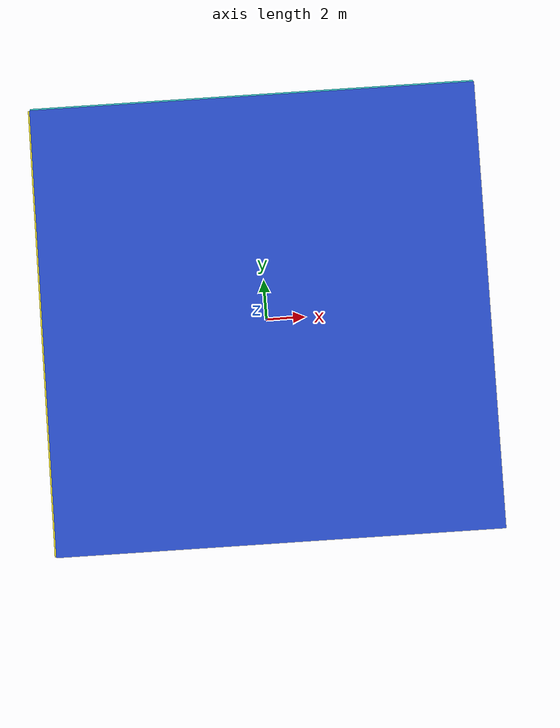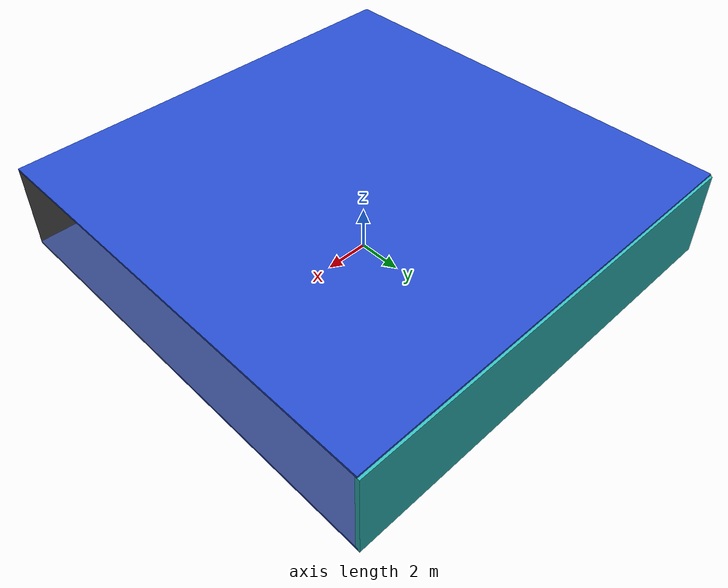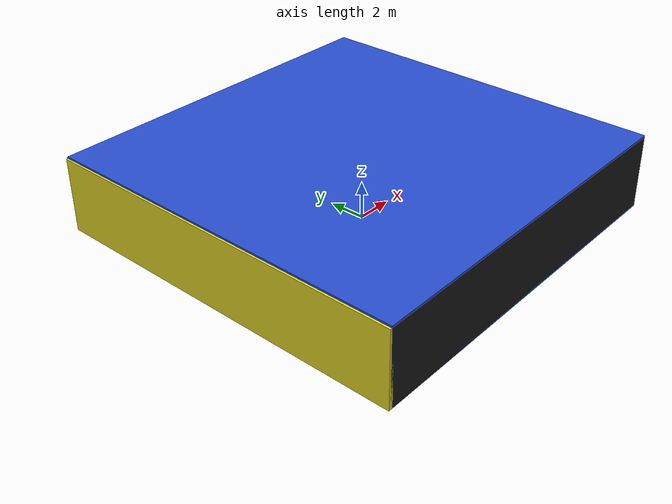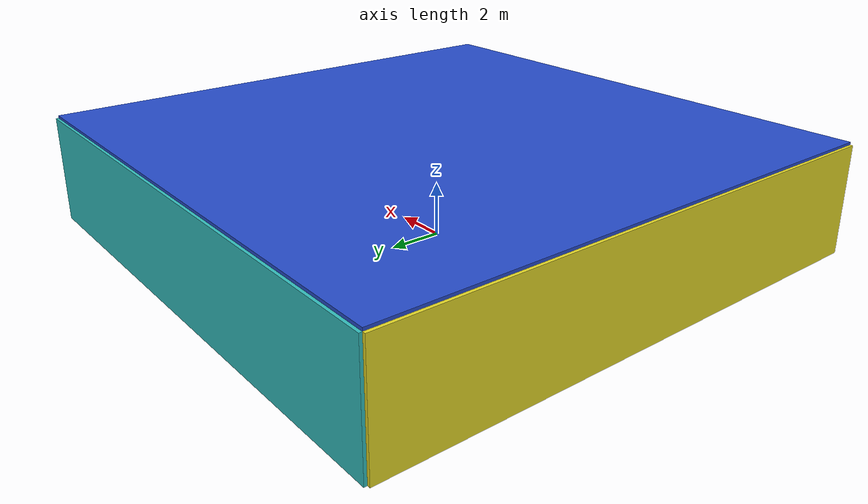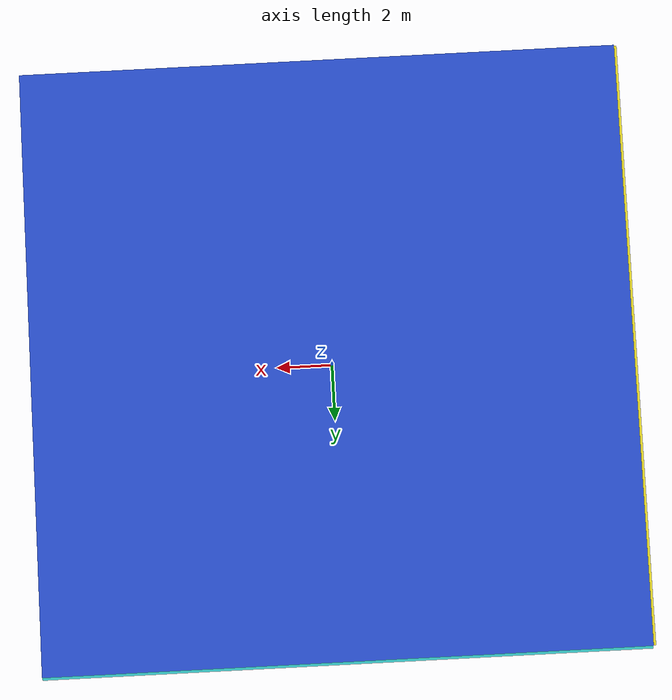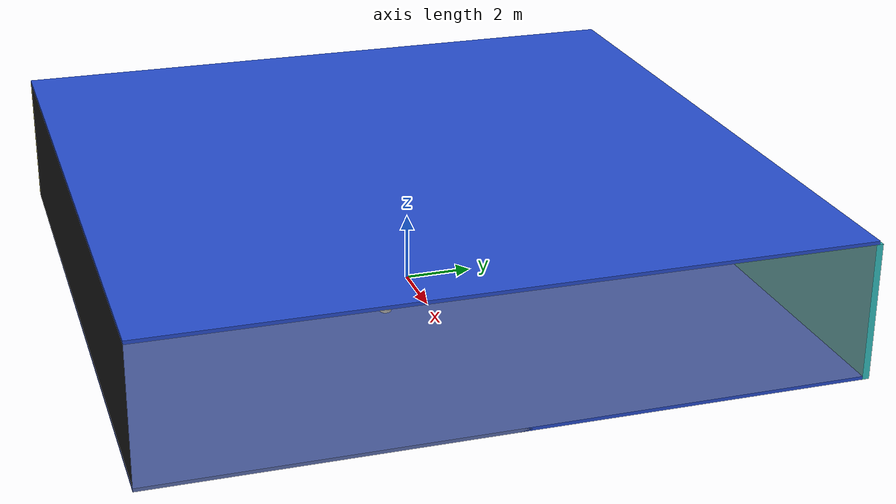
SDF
<sdf version="1.4">
 <world name="default">
  <physics type="ode">
   <max_step_size>0.001</max_step_size>
   <real_time_factor>1</real_time_factor>
   <real_time_update_rate>1000</real_time_update_rate>
   <gravity>0 0 -9.8</gravity>
  </physics>
  <scene><ambient>0.4 0.4 0.4 1</ambient><background>0.7 0.7 0.7 1</background><shadows>1</shadows></scene>
  <model name="Surrounding">
   <static>1</static>
   <link name="Ceiling">
    <collision name="Ceiling_Collision"><geometry><box><size>20 20 0.1</size></box></geometry></collision>
    <visual name="Ceiling_Visual">
     <geometry><box><size>20 20 0.1</size></box></geometry>
     <material>
      <script><uri>file://media/materials/scripts/gazebo.material</uri><name>Gazebo/Blue</name></script>
     </material>
    </visual>
    <pose>0 0 4.05 0 0 0</pose>
   </link>
   <link name="Wall_South">
    <collision name="Wall_South_Collision">
     <geometry><box><size>20 0 4</size></box></geometry>
     <pose>0 0 2 0 -0 0</pose>
    </collision>
    <visual name="Wall_South_Visual">
     <pose>0 0 2 0 -0 0</pose>
     <geometry><box><size>20 0 4</size></box></geometry>
     <material>
      <script><uri>file://media/materials/scripts/gazebo.material</uri><name>Gazebo/FlatBlack</name></script>
     </material>
    </visual>
    <velocity_decay><linear>0</linear><angular>0</angular></velocity_decay>
    <pose>0 -10 0 0 -0 0</pose>
   </link>
   <link name="Wall_East">
    <collision name="Wall_21_Collision">
     <geometry><box><size>20 0 4</size></box></geometry>
     <pose>0 0 2 0 -0 0</pose>
    </collision>
    <visual name="Wall_21_Visual">
     <pose>0 0 2 0 -0 0</pose>
     <geometry><box><size>20 0 4</size></box></geometry>
     <material>
      <script><uri>file://media/materials/scripts/gazebo.material</uri><name>Gazebo/GreyTransparent</name></script>
     </material>
    </visual>
    <velocity_decay><linear>0</linear><angular>0</angular></velocity_decay>
    <pose>10 0 0 0 -0 1.5708</pose>
   </link>
   <link name="Wall_North">
    <collision name="Wall_22_Collision">
     <geometry><box><size>20 0.2 4</size></box></geometry>
     <pose>0 0 2 0 -0 0</pose>
    </collision>
    <visual name="Wall_22_Visual">
     <pose>0 0 2 0 -0 0</pose>
     <geometry><box><size>20 0.2 4</size></box></geometry>
     <material>
      <script><uri>file://media/materials/scripts/gazebo.material</uri><name>Gazebo/Turquoise</name></script>
     </material>
    </visual>
    <velocity_decay><linear>0</linear><angular>0</angular></velocity_decay>
    <pose>0 10 0 0 -0 0</pose>
   </link>
   <link name="Wall_West">
    <collision name="Wall_23_Collision">
     <geometry><box><size>20 0.2 4</size></box></geometry>
     <pose>0 0 2 0 -0 0</pose>
    </collision>
    <visual name="Wall_23_Visual">
     <pose>0 0 2 0 -0 0</pose>
     <geometry><box><size>20 0.2 4</size></box></geometry>
     <material>
      <script><uri>file://media/materials/scripts/gazebo.material</uri><name>Gazebo/Yellow</name></script>
     </material>
    </visual>
    <velocity_decay><linear>0</linear><angular>0</angular></velocity_decay>
    <pose>-10 0 0 0 0 -1.5708</pose>
   </link>
   <link name="Ground_link">
    <collision name="collision">
     <pose>0 0 .05 0 -0 0</pose>
     <geometry><box><size>20 20 0.1</size></box></geometry>
    </collision>
    <visual name="visual">
     <pose>0 0 .05 0 -0 0</pose>
     <geometry><box><size>20 20 0.1</size></box></geometry>
     <material>
      <script><uri>file://media/materials/scripts/gazebo.material</uri><name>Gazebo/Blue</name></script>
     </material>
    </visual>
   </link>
   <static>1</static>
  </model>
  <spherical_coordinates>
   <surface_model>EARTH_WGS84</surface_model>
   <latitude_deg>0</latitude_deg>
   <longitude_deg>0</longitude_deg>
   <elevation>0</elevation>
   <heading_deg>0</heading_deg>
  </spherical_coordinates>
  <light name="lightball_0" type="diffuse">
   <diffuse>0.8 0.8 0.8 1</diffuse>
   <specular>0.2 0.2 0.2 1</specular>
   <attenuation>
    <range>100</range>
    <constant>0.7</constant>
    <linear>0.01</linear>
    <quadratic>0.001</quadratic>
   </attenuation>
   <direction>-0.5 0.1 -0.9</direction>
   <pose>4.00938773577 8.64810785529 2.54741052664 0 0 0</pose>
  </light>
  <light name="lightball_1" type="diffuse">
   <diffuse>0.8 0.8 0.8 1</diffuse>
   <specular>0.2 0.2 0.2 1</specular>
   <attenuation>
    <range>100</range>
    <constant>0.7</constant>
    <linear>0.01</linear>
    <quadratic>0.001</quadratic>
   </attenuation>
   <direction>-0.5 0.1 -0.9</direction>
   <pose>4.25381397851 6.95209213421 3.83690641933 0 0 0</pose>
  </light>
  <light name="lightball_2" type="diffuse">
   <diffuse>0.8 0.8 0.8 1</diffuse>
   <specular>0.2 0.2 0.2 1</specular>
   <attenuation>
    <range>100</range>
    <constant>0.7</constant>
    <linear>0.01</linear>
    <quadratic>0.001</quadratic>
   </attenuation>
   <direction>-0.5 0.1 -0.9</direction>
   <pose>5.99207942821 -0.306074240602 3.60823685221 0 0 0</pose>
  </light>
  <light name="lightball_3" type="diffuse">
   <diffuse>0.8 0.8 0.8 1</diffuse>
   <specular>0.2 0.2 0.2 1</specular>
   <attenuation>
    <range>100</range>
    <constant>0.7</constant>
    <linear>0.01</linear>
    <quadratic>0.001</quadratic>
   </attenuation>
   <direction>-0.5 0.1 -0.9</direction>
   <pose>-8.47561157679 9.07799029427 1.08596130105 0 0 0</pose>
  </light>
  <light name="lightball_4" type="diffuse">
   <diffuse>0.8 0.8 0.8 1</diffuse>
   <specular>0.2 0.2 0.2 1</specular>
   <attenuation>
    <range>100</range>
    <constant>0.7</constant>
    <linear>0.01</linear>
    <quadratic>0.001</quadratic>
   </attenuation>
   <direction>-0.5 0.1 -0.9</direction>
   <pose>6.40735063129 2.85435384557 2.44622488895 0 0 0</pose>
  </light>
  <light name="lightball_5" type="diffuse">
   <diffuse>0.8 0.8 0.8 1</diffuse>
   <specular>0.2 0.2 0.2 1</specular>
   <attenuation>
    <range>100</range>
    <constant>0.7</constant>
    <linear>0.01</linear>
    <quadratic>0.001</quadratic>
   </attenuation>
   <direction>-0.5 0.1 -0.9</direction>
   <pose>3.30875277411 6.15582343456 2.10905456353 0 0 0</pose>
  </light>
  <light name="lightball_6" type="diffuse">
   <diffuse>0.8 0.8 0.8 1</diffuse>
   <specular>0.2 0.2 0.2 1</specular>
   <attenuation>
    <range>100</range>
    <constant>0.7</constant>
    <linear>0.01</linear>
    <quadratic>0.001</quadratic>
   </attenuation>
   <direction>-0.5 0.1 -0.9</direction>
   <pose>3.43284221073 -4.75085090237 2.47111038089 0 0 0</pose>
  </light>
  <light name="lightball_7" type="diffuse">
   <diffuse>0.8 0.8 0.8 1</diffuse>
   <specular>0.2 0.2 0.2 1</specular>
   <attenuation>
    <range>100</range>
    <constant>0.7</constant>
    <linear>0.01</linear>
    <quadratic>0.001</quadratic>
   </attenuation>
   <direction>-0.5 0.1 -0.9</direction>
   <pose>-9.04939982396 -2.92155586157 3.45935030378 0 0 0</pose>
  </light>
  <light name="lightball_8" type="diffuse">
   <diffuse>0.8 0.8 0.8 1</diffuse>
   <specular>0.2 0.2 0.2 1</specular>
   <attenuation>
    <range>100</range>
    <constant>0.7</constant>
    <linear>0.01</linear>
    <quadratic>0.001</quadratic>
   </attenuation>
   <direction>-0.5 0.1 -0.9</direction>
   <pose>9.83859067223 7.48720994181 3.83461380372 0 0 0</pose>
  </light>
  <include><uri>model://cabinet</uri><pose>-7.23773433197 -6.95532254741 0 0 0 0.698795450513</pose></include>
  <include><uri>model://table</uri><pose>-7.68572865772 -4.29649323155 0 0 0 0.589268818993</pose></include>
  <include><uri>model://cabinet</uri><pose>-5.18931099011 -1.99359017036 0 0 0 0.81844450477</pose></include>
  <include>
   <uri>model://construction_cone</uri>
   <pose>2.26752762904 -1.36168596033 0 0 0 3.06383031339</pose>
  </include>
 </world>
</sdf>

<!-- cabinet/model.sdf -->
<sdf version="1.5">
  <model name="cabinet">
    <static>true</static>
    <link name="cabinet_bottom_plate">
      <inertial>
        <pose>0 0 -1 0 0 0</pose>
        <inertia>
          <ixx>2.050000</ixx>
          <ixy>0</ixy>
          <ixz>0</ixz>
          <iyy>2.050000</iyy>
          <iyz>0</iyz>
          <izz>2.050000</izz>
        </inertia>
        <mass>25.000000</mass>
      </inertial>
      <collision name="cabinet_bottom_plate_geom">
        <pose>0 0 0.010000 0 0 0</pose>
        <geometry>
          <box>
            <size>0.450000 0.450000 0.020000</size>
          </box>
        </geometry>
      </collision>
      <visual name="cabinet_bottom_plate_geom_visual">
        <pose>0 0 0.010000 0 0 0</pose>
        <geometry>
          <box>
            <size>0.450000 0.450000 0.020000</size>
          </box>
        </geometry>
        <material>
          <script>
            <uri>model://media/materials/scripts/gazebo.material</uri>
            <name>Gazebo/Wood</name>
          </script>
        </material>
      </visual>
      <collision name="cabinet_bottom_plate_geom_cabinet_back_plate">
        <pose>0.235000 0 0.510000 0 0 0</pose>
        <geometry>
          <box>
            <size>0.020000 0.450000 1.020000</size>
          </box>
        </geometry>
      </collision>
      <visual name="cabinet_bottom_plate_geom_cabinet_back_plate_visual">
        <pose>0.235000 0 0.510000 0 0 0</pose>
        <geometry>
          <box>
            <size>0.020000 0.450000 1.020000</size>
          </box>
        </geometry>
        <material>
          <script>
            <uri>model://media/materials/scripts/gazebo.material</uri>
            <name>Gazebo/Wood</name>
          </script>
        </material>
      </visual>
      <collision name="cabinet_bottom_plate_geom_cabinet_left_plate">
        <pose>0 0.235000 0.510000 0 0 0</pose>
        <geometry>
          <box>
            <size>0.450000 0.020000 1.020000</size>
          </box>
        </geometry>
      </collision>
      <visual name="cabinet_bottom_plate_geom_cabinet_left_plate_visual">
        <pose>0 0.235000 0.510000 0 0 0</pose>
        <geometry>
          <box>
            <size>0.450000 0.020000 1.020000</size>
          </box>
        </geometry>
        <material>
          <script>
            <uri>model://media/materials/scripts/gazebo.material</uri>
            <name>Gazebo/Wood</name>
          </script>
        </material>
      </visual>
      <collision name="cabinet_bottom_plate_geom_cabinet_middle_plate">
        <pose>0 0 0.510000 0 0 0</pose>
        <geometry>
          <box>
            <size>0.450000 0.450000 0.020000</size>
          </box>
        </geometry>
      </collision>
      <visual name="cabinet_bottom_plate_geom_cabinet_middle_plate_visual">
        <pose>0 0 0.510000 0 0 0</pose>
        <geometry>
          <box>
            <size>0.450000 0.450000 0.020000</size>
          </box>
        </geometry>
        <material>
          <script>
            <uri>model://media/materials/scripts/gazebo.material</uri>
            <name>Gazebo/Wood</name>
          </script>
        </material>
      </visual>
      <collision name="cabinet_bottom_plate_geom_cabinet_right_plate">
        <pose>0 -0.235000 0.510000 0 0 0</pose>
        <geometry>
          <box>
            <size>0.450000 0.020000 1.020000</size>
          </box>
        </geometry>
      </collision>
      <visual name="cabinet_bottom_plate_geom_cabinet_right_plate_visual">
        <pose>0 -0.235000 0.510000 0 0 0</pose>
        <geometry>
          <box>
            <size>0.450000 0.020000 1.020000</size>
          </box>
        </geometry>
        <material>
          <script>
            <uri>model://media/materials/scripts/gazebo.material</uri>
            <name>Gazebo/Wood</name>
          </script>
        </material>
      </visual>
      <collision name="cabinet_bottom_plate_geom_cabinet_top_plate">
        <pose>0 0 1.010000 0 0 0</pose>
        <geometry>
          <box>
            <size>0.450000 0.450000 0.020000</size>
          </box>
        </geometry>
      </collision>
      <visual name="cabinet_bottom_plate_geom_cabinet_top_plate_visual">
        <pose>0 0 1.010000 0 0 0</pose>
        <geometry>
          <box>
            <size>0.450000 0.450000 0.020000</size>
          </box>
        </geometry>
        <material>
          <script>
            <uri>model://media/materials/scripts/gazebo.material</uri>
            <name>Gazebo/Wood</name>
          </script>
        </material>
      </visual>
    </link>
  </model>
</sdf>

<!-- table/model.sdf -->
<sdf version="1.5">
  <model name="table">
    <static>true</static>
    <link name="link">
      <collision name="surface">
        <pose>0 0 1.0 0 0 0</pose>
        <geometry>
          <box>
            <size>1.5 0.8 0.03</size>
          </box>
        </geometry>
        <surface>
          <friction>
            <ode>
              <mu>0.6</mu>
              <mu2>0.6</mu2>
            </ode>
          </friction>
        </surface>
      </collision>
      <visual name="visual1">
        <pose>0 0 1.0 0 0 0</pose>
        <geometry>
          <box>
            <size>1.5 0.8 0.03</size>
          </box>
        </geometry>
        <material>
          <script>
            <uri>model://media/materials/scripts/gazebo.material</uri>
            <name>Gazebo/Wood</name>
          </script>
        </material>
      </visual>
      <collision name="front_left_leg">
        <pose>0.68 0.38 0.5 0 0 0</pose>
        <geometry>
          <cylinder>
            <radius>0.02</radius>
            <length>1.0</length>
          </cylinder>
        </geometry>
      </collision>
      <visual name="front_left_leg">
        <pose>0.68 0.38 0.5 0 0 0</pose>
        <geometry>
          <cylinder>
            <radius>0.02</radius>
            <length>1.0</length>
          </cylinder>
        </geometry>
        <material>
          <script>
            <uri>model://media/materials/scripts/gazebo.material</uri>
            <name>Gazebo/Grey</name>
          </script>
        </material>
      </visual>
      <collision name="front_right_leg">
        <pose>0.68 -0.38 0.5 0 0 0</pose>
        <geometry>
          <cylinder>
            <radius>0.02</radius>
            <length>1.0</length>
          </cylinder>
        </geometry>
      </collision>
      <visual name="front_right_leg">
        <pose>0.68 -0.38 0.5 0 0 0</pose>
        <geometry>
          <cylinder>
            <radius>0.02</radius>
            <length>1.0</length>
          </cylinder>
        </geometry>
        <material>
          <script>
            <uri>model://media/materials/scripts/gazebo.material</uri>
            <name>Gazebo/Grey</name>
          </script>
        </material>
      </visual>
      <collision name="back_right_leg">
        <pose>-0.68 -0.38 0.5 0 0 0</pose>
        <geometry>
          <cylinder>
            <radius>0.02</radius>
            <length>1.0</length>
          </cylinder>
        </geometry>
      </collision>
      <visual name="back_right_leg">
        <pose>-0.68 -0.38 0.5 0 0 0</pose>
        <geometry>
          <cylinder>
            <radius>0.02</radius>
            <length>1.0</length>
          </cylinder>
        </geometry>
        <material>
          <script>
            <uri>model://media/materials/scripts/gazebo.material</uri>
            <name>Gazebo/Grey</name>
          </script>
        </material>
      </visual>
      <collision name="back_left_leg">
        <pose>-0.68 0.38 0.5 0 0 0</pose>
        <geometry>
          <cylinder>
            <radius>0.02</radius>
            <length>1.0</length>
          </cylinder>
        </geometry>
      </collision>
      <visual name="back_left_leg">
        <pose>-0.68 0.38 0.5 0 0 0</pose>
        <geometry>
          <cylinder>
            <radius>0.02</radius>
            <length>1.0</length>
          </cylinder>
        </geometry>
        <material>
          <script>
            <uri>model://media/materials/scripts/gazebo.material</uri>
            <name>Gazebo/Grey</name>
          </script>
        </material>
      </visual>
    </link>
  </model>
</sdf>

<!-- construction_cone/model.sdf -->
<sdf version="1.5">
  <model name="Construction Cone">
    <link name="link">
      <collision name="collision">
        <geometry>
          <mesh>
            <scale>10 10 10</scale>
            <uri>file://isr-testbed/construction_cone/meshes/construction_cone.dae</uri>
          </mesh>
        </geometry>
      </collision>
      <visual name="visual">
        <geometry>
          <mesh>
            <scale>10 10 10</scale>
            <uri>file://isr-testbed/construction_cone/meshes/construction_cone.dae</uri>
          </mesh>
        </geometry>
      </visual>
    </link>
  </model>
</sdf>
